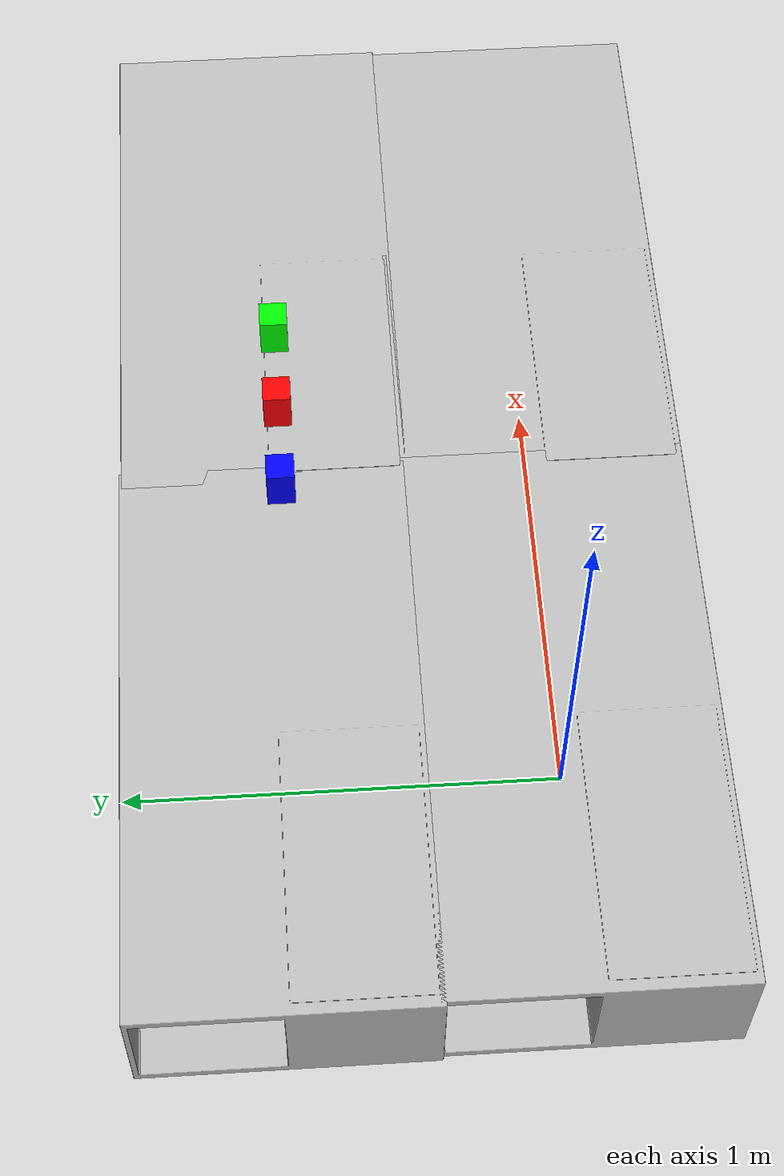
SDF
<sdf version="1.9">
 <world name="empty_world">
  <gravity>0 0 -9.8</gravity>
  <magnetic_field>6e-06 2.3e-05 -4.2e-05</magnetic_field>
  <atmosphere type="adiabatic"/>
  <physics type="ode">
   <max_step_size>0.001</max_step_size>
   <real_time_factor>1</real_time_factor>
   <real_time_update_rate>1000</real_time_update_rate>
  </physics>
  <scene><ambient>0.4 0.4 0.4 1</ambient><background>0.7 0.7 0.7 1</background><shadows>true</shadows></scene>
  <model name="red_box">
   <static>false</static>
   <pose>0.6 0.6 0.70 0 0 0</pose>
   <link name="red_link">
    <inertial>
     <mass>0.05</mass>
     <inertia>
      <ixx>0.000075</ixx>
      <ixy>0</ixy>
      <ixz>0</ixz>
      <iyy>0.000075</iyy>
      <iyz>0</iyz>
      <izz>0.000060</izz>
     </inertia>
    </inertial>
    <collision name="red_collision">
     <geometry><box><size>0.06 0.06 0.10</size></box></geometry>
     <surface><friction><ode><mu>0.8</mu><mu2>0.8</mu2></ode></friction></surface>
    </collision>
    <visual name="red_visual">
     <geometry><box><size>0.06 0.06 0.10</size></box></geometry>
     <material><ambient>1 0 0 1</ambient><diffuse>1 0 0 1</diffuse></material>
    </visual>
   </link>
  </model>
  <model name="green_box">
   <static>false</static>
   <pose>0.8 0.6 0.70 0 0 0</pose>
   <link name="green_link">
    <inertial>
     <mass>0.05</mass>
     <inertia>
      <ixx>0.000075</ixx>
      <ixy>0</ixy>
      <ixz>0</ixz>
      <iyy>0.000075</iyy>
      <iyz>0</iyz>
      <izz>0.000060</izz>
     </inertia>
    </inertial>
    <collision name="green_collision">
     <geometry><box><size>0.06 0.06 0.10</size></box></geometry>
     <surface><friction><ode><mu>0.8</mu><mu2>0.8</mu2></ode></friction></surface>
    </collision>
    <visual name="green_visual">
     <geometry><box><size>0.06 0.06 0.10</size></box></geometry>
     <material><ambient>0 1 0 1</ambient><diffuse>0 1 0 1</diffuse></material>
    </visual>
   </link>
  </model>
  <model name="blue_box">
   <static>false</static>
   <pose>0.4 0.6 0.70 0 0 0</pose>
   <link name="blue_link">
    <inertial>
     <mass>0.05</mass>
     <inertia>
      <ixx>0.000075</ixx>
      <ixy>0</ixy>
      <ixz>0</ixz>
      <iyy>0.000075</iyy>
      <iyz>0</iyz>
      <izz>0.000060</izz>
     </inertia>
    </inertial>
    <collision name="blue_collision">
     <geometry><box><size>0.06 0.06 0.10</size></box></geometry>
     <surface><friction><ode><mu>0.8</mu><mu2>0.8</mu2></ode></friction></surface>
    </collision>
    <visual name="blue_visual">
     <geometry><box><size>0.06 0.06 0.10</size></box></geometry>
     <material><ambient>0 0 1 1</ambient><diffuse>0 0 1 1</diffuse></material>
    </visual>
   </link>
  </model>
  <model name="CoffeeTable_1">
   <static>true</static>
   <pose>0 0 0.041983 0 0 0</pose>
   <link name="link">
    <collision name="collision">
     <geometry><box><size>1.25 0.65 0.10</size></box></geometry>
     <surface>
      <contact><ode><max_vel>0.01</max_vel></ode></contact>
      <friction><ode><mu>0.6</mu><mu2>0.6</mu2></ode></friction>
     </surface>
    </collision>
    <visual name="visual">
     <geometry>
      <mesh>
       <uri>model://aws_robomaker_residential_CoffeeTable_01/meshes/aws_CoffeeTable_01_visual.DAE</uri>
       <scale>1 1 1</scale>
      </mesh>
     </geometry>
    </visual>
   </link>
  </model>
  <model name="CoffeeTable_2">
   <static>true</static>
   <pose>1.2577 0 0.041983 0 0 0</pose>
   <link name="link">
    <collision name="collision">
     <geometry><box><size>1.25 0.65 0.10</size></box></geometry>
     <surface>
      <contact><ode><max_vel>0.01</max_vel></ode></contact>
      <friction><ode><mu>0.6</mu><mu2>0.6</mu2></ode></friction>
     </surface>
    </collision>
    <visual name="visual">
     <geometry>
      <mesh>
       <uri>model://aws_robomaker_residential_CoffeeTable_01/meshes/aws_CoffeeTable_01_visual.DAE</uri>
       <scale>1 1 1</scale>
      </mesh>
     </geometry>
    </visual>
   </link>
  </model>
  <model name="CoffeeTable_3">
   <static>true</static>
   <pose>1.26554 0.637963 0.041983 0 0 0</pose>
   <link name="link">
    <collision name="collision">
     <geometry><box><size>1.25 0.65 0.10</size></box></geometry>
     <surface>
      <contact><ode><max_vel>0.01</max_vel></ode></contact>
      <friction><ode><mu>0.6</mu><mu2>0.6</mu2></ode></friction>
     </surface>
    </collision>
    <visual name="visual">
     <geometry>
      <mesh>
       <uri>model://aws_robomaker_residential_CoffeeTable_01/meshes/aws_CoffeeTable_01_visual.DAE</uri>
       <scale>1 1 1</scale>
      </mesh>
     </geometry>
    </visual>
   </link>
  </model>
  <model name="CoffeeTable_4">
   <static>true</static>
   <pose>-0.008642 0.643146 0.041983 0 0 0</pose>
   <link name="link">
    <collision name="collision">
     <geometry><box><size>1.25 0.65 0.10</size></box></geometry>
     <surface>
      <contact><ode><max_vel>0.01</max_vel></ode></contact>
      <friction><ode><mu>0.6</mu><mu2>0.6</mu2></ode></friction>
     </surface>
    </collision>
    <visual name="visual">
     <geometry>
      <mesh>
       <uri>model://aws_robomaker_residential_CoffeeTable_01/meshes/aws_CoffeeTable_01_visual.DAE</uri>
       <scale>1 1 1</scale>
      </mesh>
     </geometry>
    </visual>
   </link>
  </model>
  <model name="ground_plane">
   <static>true</static>
   <link name="link">
    <collision name="collision">
     <geometry><plane><normal>0 0 1</normal><size>100 100</size></plane></geometry>
     <surface><friction><ode><mu>1.0</mu><mu2>1.0</mu2></ode></friction></surface>
    </collision>
    <visual name="visual">
     <geometry><plane><normal>0 0 1</normal><size>100 100</size></plane></geometry>
     <material>
      <ambient>0.8 0.8 0.8 1</ambient>
      <diffuse>0.8 0.8 0.8 1</diffuse>
      <specular>0.8 0.8 0.8 1</specular>
     </material>
    </visual>
   </link>
  </model>
  <light name="sun" type="directional">
   <pose>0 0 10 0 0 0</pose>
   <intensity>1</intensity>
   <direction>-0.5 0.1 -0.9</direction>
   <diffuse>0.8 0.8 0.8 1</diffuse>
   <specular>0.2 0.2 0.2 1</specular>
   <attenuation>
    <range>1000</range>
    <linear>0.01</linear>
    <constant>0.9</constant>
    <quadratic>0.001</quadratic>
   </attenuation>
   <spot><inner_angle>0</inner_angle><outer_angle>0</outer_angle><falloff>0</falloff></spot>
  </light>
 </world>
</sdf>
